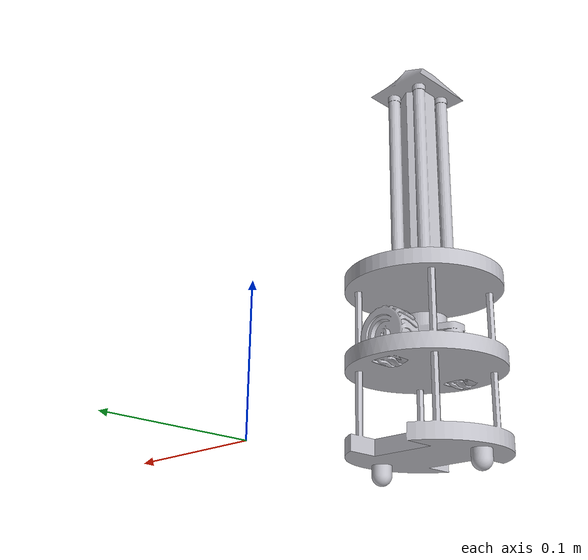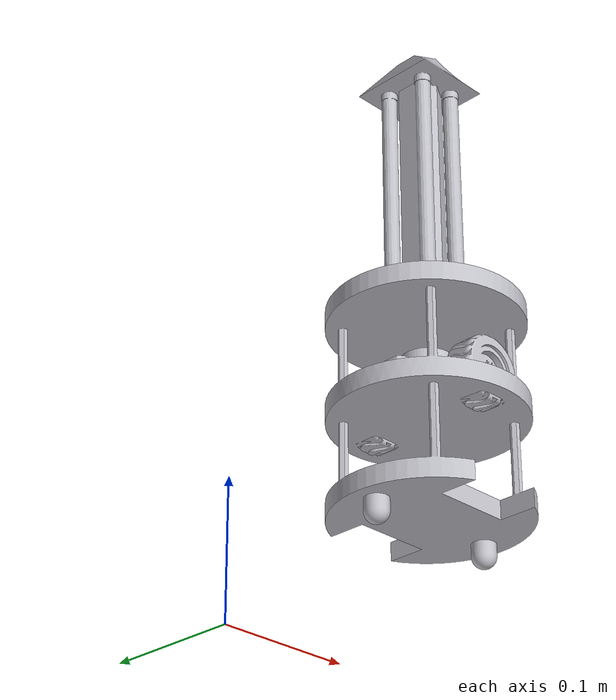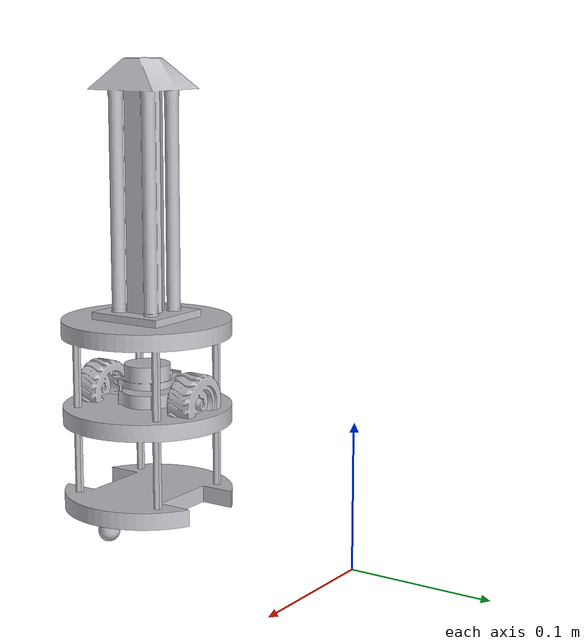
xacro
<?xml version="1.0" ?>
<robot name="AJ_Robot_1" xmlns:xacro="http://www.ros.org/wiki/xacro">

<xacro:include filename="$(find robot_2_description)/urdf/materials.xacro" />
<xacro:include filename="$(find robot_2_description)/urdf/AJ_Robot_1.trans" />
<xacro:include filename="$(find robot_2_description)/urdf/AJ_Robot_1.gazebo" />
<link name="base_link">
  <inertial>
    <origin rpy="0 0 0" xyz="-2.3811758347152808e-17 -0.17 0.08849608819331863"/>
    <mass value="2.9983226374255394"/>
    <inertia ixx="0.009617" ixy="0.0" ixz="-0.0" iyy="0.0101" iyz="0.0" izz="0.005331"/>
  </inertial>
  <visual>
    <origin rpy="0 0 0" xyz="0 0 0"/>
    <geometry>
      <mesh filename="package://robot_2_description/meshes/base_link.stl" scale="0.001 0.001 0.001"/>
    </geometry>
    <material name="silver"/>
  </visual>
  <collision>
    <origin rpy="0 0 0" xyz="0 0 0"/>
    <geometry>
      <mesh filename="package://robot_2_description/meshes/base_link.stl" scale="0.001 0.001 0.001"/>
    </geometry>
  </collision>
</link>

<link name="Wheel2_1">
  <inertial>
    <origin rpy="0 0 0" xyz="-1.2928321737958097e-09 0.017071406749536236 6.50085484402152e-09"/>
    <mass value="0.14078492311940977"/>
    <inertia ixx="2.1e-05" ixy="0.0" ixz="-0.0" iyy="3.5e-05" iyz="-0.0" izz="2.1e-05"/>
  </inertial>
  <visual>
    <origin rpy="0 0 0" xyz="-0.0 0.14 -0.021"/>
    <geometry>
      <mesh filename="package://robot_2_description/meshes/Wheel2_1.stl" scale="0.001 0.001 0.001"/>
    </geometry>
    <material name="silver"/>
  </visual>
  <collision>
    <origin rpy="0 0 0" xyz="-0.0 0.14 -0.021"/>
    <geometry>
      <mesh filename="package://robot_2_description/meshes/Wheel2_1.stl" scale="0.001 0.001 0.001"/>
    </geometry>
  </collision>
</link>

<link name="Wheel1_1">
  <inertial>
    <origin rpy="0 0 0" xyz="1.2928295804120461e-09 -0.017071425718733574 6.5008547815714746e-09"/>
    <mass value="0.14078492311940372"/>
    <inertia ixx="2.1e-05" ixy="0.0" ixz="0.0" iyy="3.5e-05" iyz="-0.0" izz="2.1e-05"/>
  </inertial>
  <visual>
    <origin rpy="0 0 0" xyz="-0.0 0.2 -0.021"/>
    <geometry>
      <mesh filename="package://robot_2_description/meshes/Wheel1_1.stl" scale="0.001 0.001 0.001"/>
    </geometry>
    <material name="silver"/>
  </visual>
  <collision>
    <origin rpy="0 0 0" xyz="-0.0 0.2 -0.021"/>
    <geometry>
      <mesh filename="package://robot_2_description/meshes/Wheel1_1.stl" scale="0.001 0.001 0.001"/>
    </geometry>
  </collision>
</link>

<link name="Lidar_1">
  <inertial>
    <origin rpy="0 0 0" xyz="-0.003014093049047084 -2.7755575615628914e-17 0.013927495632128181"/>
    <mass value="0.21813033547639984"/>
    <inertia ixx="3.2e-05" ixy="0.0" ixz="-2e-06" iyy="4.5e-05" iyz="-0.0" izz="4.5e-05"/>
  </inertial>
  <visual>
    <origin rpy="0 0 0" xyz="0.0 0.17 -0.089"/>
    <geometry>
      <mesh filename="package://robot_2_description/meshes/Lidar_1.stl" scale="0.001 0.001 0.001"/>
    </geometry>
    <material name="silver"/>
  </visual>
  <collision>
    <origin rpy="0 0 0" xyz="0.0 0.17 -0.089"/>
    <geometry>
      <mesh filename="package://robot_2_description/meshes/Lidar_1.stl" scale="0.001 0.001 0.001"/>
    </geometry>
  </collision>
</link>

<link name="UV_Lamp_1">
  <inertial>
    <origin rpy="0 0 0" xyz="0.00011440770475406064 -4.108850565998079e-05 0.09562068332536955"/>
    <mass value="0.9567208625597653"/>
    <inertia ixx="0.003745" ixy="0.0" ixz="-2e-06" iyy="0.003723" iyz="1e-06" izz="0.000305"/>
  </inertial>
  <visual>
    <origin rpy="0 0 0" xyz="0.0 0.17 -0.151"/>
    <geometry>
      <mesh filename="package://robot_2_description/meshes/UV_Lamp_1.stl" scale="0.001 0.001 0.001"/>
    </geometry>
    <material name="silver"/>
  </visual>
  <collision>
    <origin rpy="0 0 0" xyz="0.0 0.17 -0.151"/>
    <geometry>
      <mesh filename="package://robot_2_description/meshes/UV_Lamp_1.stl" scale="0.001 0.001 0.001"/>
    </geometry>
  </collision>
</link>

<link name="Caster1_1">
  <inertial>
    <origin rpy="0 0 0" xyz="0.014999999999529452 0.0 -0.007375000000000005"/>
    <mass value="0.017340118826259073"/>
    <inertia ixx="0.0" ixy="-0.0" ixz="0.0" iyy="0.0" iyz="0.0" izz="0.0"/>
  </inertial>
  <visual>
    <origin rpy="0 0 0" xyz="0.06 0.17 -0.016"/>
    <geometry>
      <mesh filename="package://robot_2_description/meshes/Caster1_1.stl" scale="0.001 0.001 0.001"/>
    </geometry>
    <material name="silver"/>
  </visual>
  <collision>
    <origin rpy="0 0 0" xyz="0.06 0.17 -0.016"/>
    <geometry>
      <mesh filename="package://robot_2_description/meshes/Caster1_1.stl" scale="0.001 0.001 0.001"/>
    </geometry>
  </collision>
</link>

<link name="Caster2_1">
  <inertial>
    <origin rpy="0 0 0" xyz="-0.01500000000047054 0.0 -0.007375000000000005"/>
    <mass value="0.017340118826259073"/>
    <inertia ixx="0.0" ixy="0.0" ixz="0.0" iyy="0.0" iyz="0.0" izz="0.0"/>
  </inertial>
  <visual>
    <origin rpy="0 0 0" xyz="-0.06 0.17 -0.016"/>
    <geometry>
      <mesh filename="package://robot_2_description/meshes/Caster2_1.stl" scale="0.001 0.001 0.001"/>
    </geometry>
    <material name="silver"/>
  </visual>
  <collision>
    <origin rpy="0 0 0" xyz="-0.06 0.17 -0.016"/>
    <geometry>
      <mesh filename="package://robot_2_description/meshes/Caster2_1.stl" scale="0.001 0.001 0.001"/>
    </geometry>
  </collision>
</link>

<joint name="Rev1" type="continuous">
  <origin rpy="0 0 0" xyz="0.0 -0.14 0.021"/>
  <parent link="base_link"/>
  <child link="Wheel2_1"/>
  <axis xyz="0.0 1.0 0.0"/>
</joint>

<joint name="Rev2" type="continuous">
  <origin rpy="0 0 0" xyz="0.0 -0.2 0.021"/>
  <parent link="base_link"/>
  <child link="Wheel1_1"/>
  <axis xyz="-0.0 1.0 -0.0"/>
</joint>

<joint name="LidarJoint" type="fixed">
  <origin rpy="0 0 0" xyz="0.0 -0.17 0.089"/>
  <parent link="base_link"/>
  <child link="Lidar_1"/>
</joint>

<joint name="UVLampJoint" type="fixed">
  <origin rpy="0 0 0" xyz="0.0 -0.17 0.151"/>
  <parent link="base_link"/>
  <child link="UV_Lamp_1"/>
</joint>

<joint name="Caster1Joint" type="fixed">
  <origin rpy="0 0 0" xyz="-0.06 -0.17 0.016"/>
  <parent link="base_link"/>
  <child link="Caster1_1"/>
</joint>

<joint name="Caster2Joint" type="fixed">
  <origin rpy="0 0 0" xyz="0.06 -0.17 0.016"/>
  <parent link="base_link"/>
  <child link="Caster2_1"/>
</joint>

</robot>

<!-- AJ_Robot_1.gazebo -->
<robot name="AJ_Robot_1" xmlns:xacro="http://www.ros.org/wiki/xacro" >

<xacro:property name="body_color" value="Gazebo/Silver" />

<gazebo>
  <plugin filename="libgazebo_ros_control.so" name="control"/>
</gazebo>
<gazebo reference="base_link">
  <material>${body_color}</material>
  <mu1>0.2</mu1>
  <mu2>0.2</mu2>
  <selfCollide>true</selfCollide>
  <gravity>true</gravity>
</gazebo>

<gazebo reference="Wheel2_1">
  <material>${body_color}</material>
  <mu1>0.2</mu1>
  <mu2>0.2</mu2>
  <selfCollide>true</selfCollide>
</gazebo>

<gazebo reference="Wheel1_1">
  <material>${body_color}</material>
  <mu1>0.2</mu1>
  <mu2>0.2</mu2>
  <selfCollide>true</selfCollide>
</gazebo>

<gazebo reference="Lidar_1">
  <material>${body_color}</material>
  <mu1>0.2</mu1>
  <mu2>0.2</mu2>
  <selfCollide>true</selfCollide>
</gazebo>

<gazebo reference="UV_Lamp_1">
  <material>${body_color}</material>
  <mu1>0.2</mu1>
  <mu2>0.2</mu2>
  <selfCollide>true</selfCollide>
</gazebo>

<gazebo reference="Caster1_1">
  <material>${body_color}</material>
  <mu1>0.2</mu1>
  <mu2>0.2</mu2>
  <selfCollide>true</selfCollide>
</gazebo>

<gazebo reference="Caster2_1">
  <material>${body_color}</material>
  <mu1>0.2</mu1>
  <mu2>0.2</mu2>
  <selfCollide>true</selfCollide>
</gazebo>

</robot>
